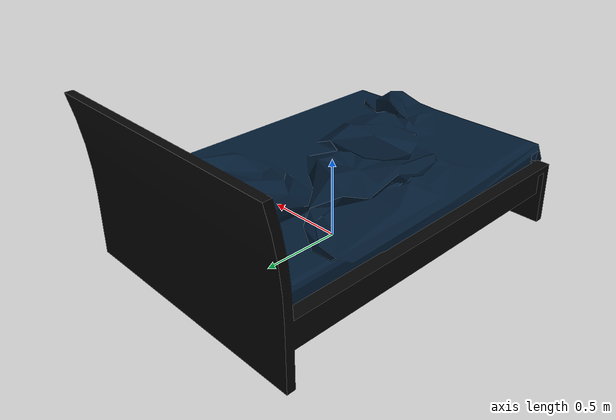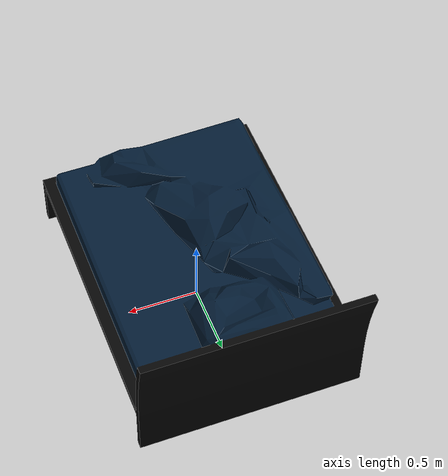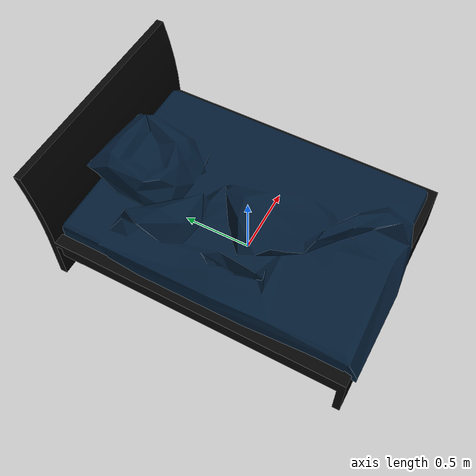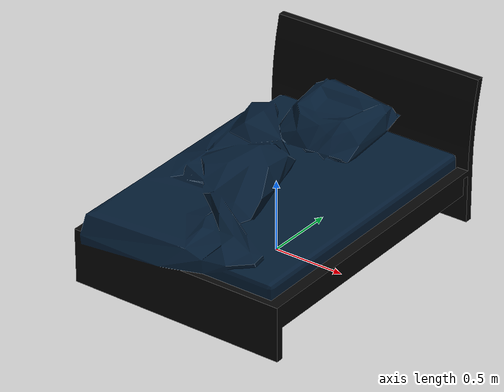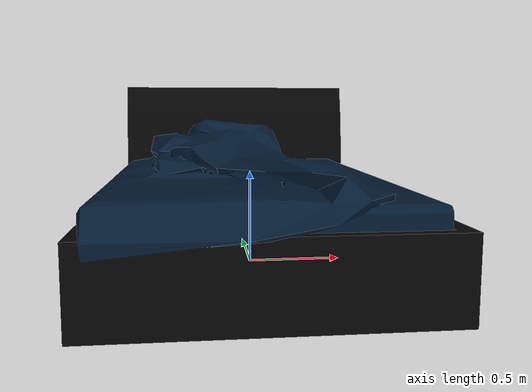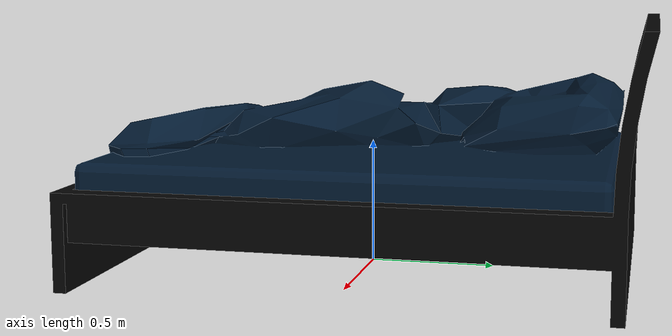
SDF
<?xml version='1.0'?>
<sdf version="1.4">
	<model name="bed">
		<static>1</static>
		<link name="link">
			<visual name="mesh">
				<geometry>
					<mesh>
						<uri>model://meshes/bed_messy.dae</uri>
					</mesh>
				</geometry>
			</visual>
			<collision name="frame">
				<pose>0 0 0.14 0 0 0</pose>
				<geometry>
					<box>
						<size>1.56 2.185 0.38</size>
					</box>
				</geometry>
			</collision>
		</link>
	</model>
</sdf>
